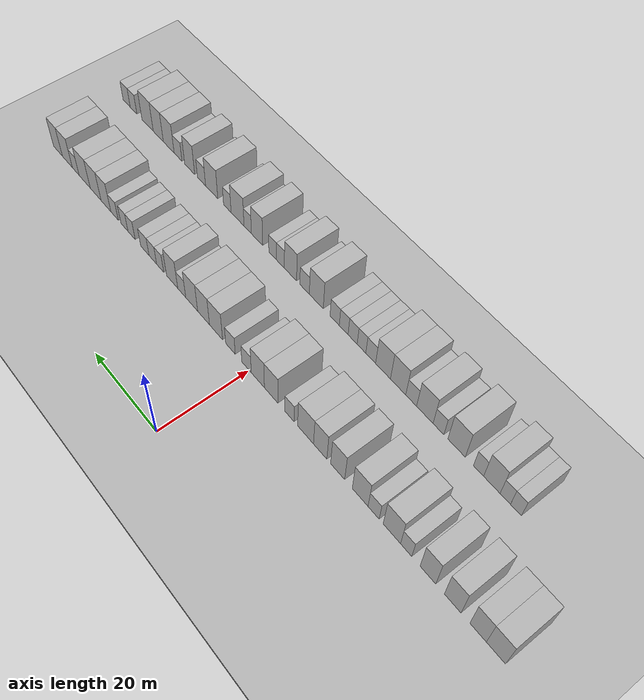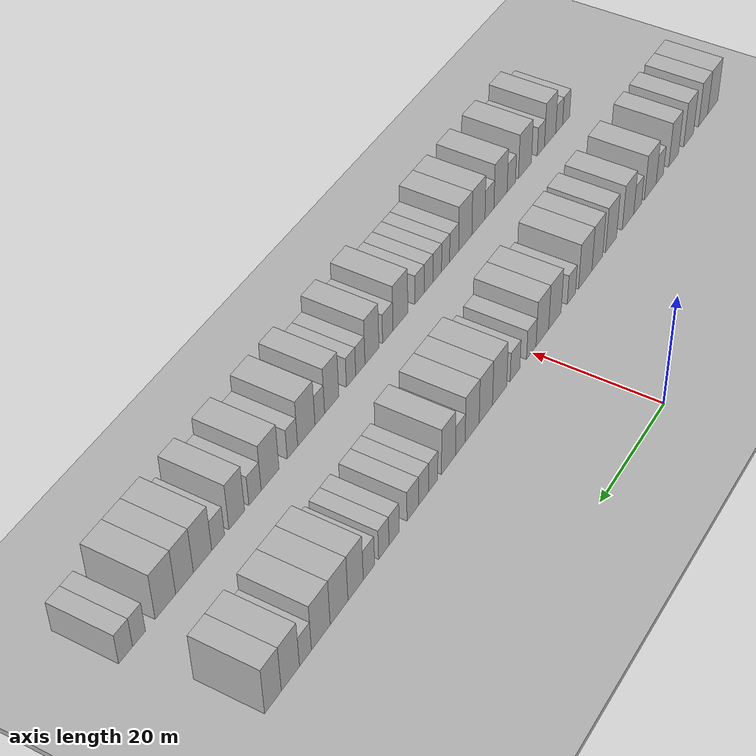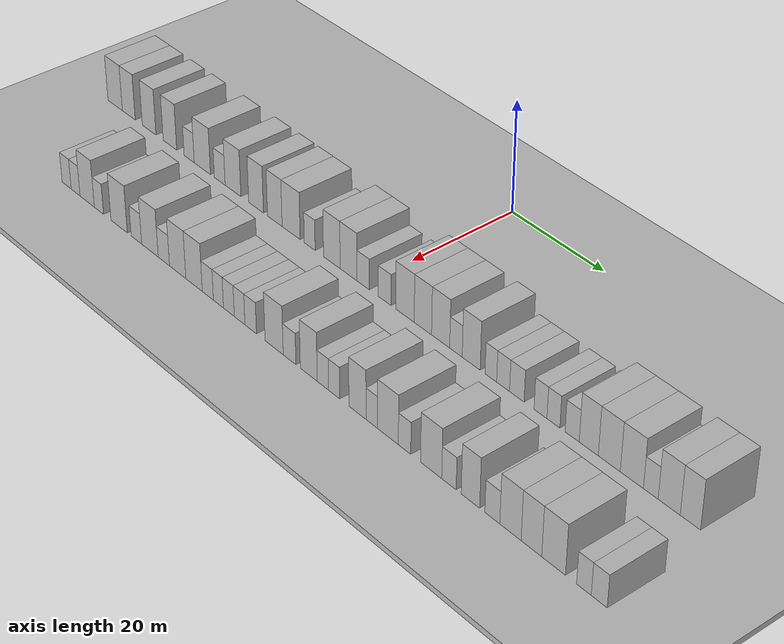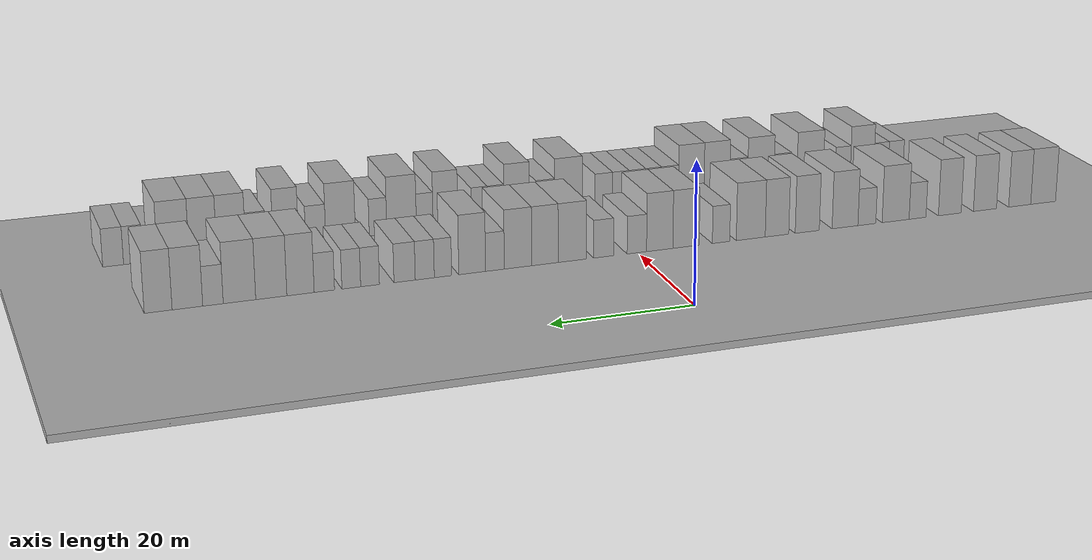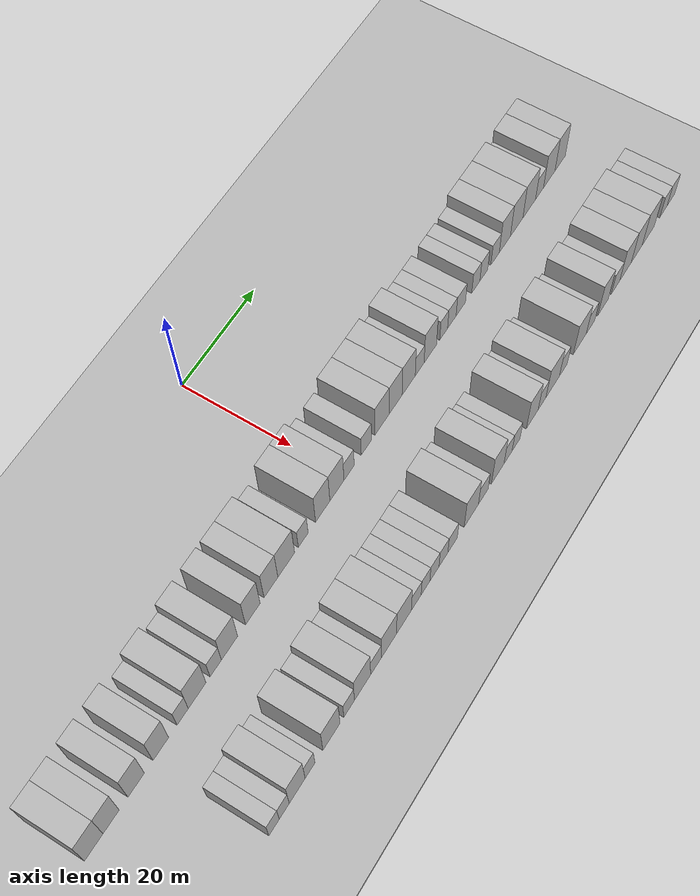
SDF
<sdf version="1.6">
 <world name="default">
  <include><name>ground_plane_1</name><uri>model://HANNAS_ground_plane</uri></include>
  <include>
   <name>ground_plane_2</name>
   <uri>model://HANNAS_ground_plane</uri>
   <pose>100 0 0  0 0 0</pose>
  </include>
  <model name="building_33">
   <static>1</static>
   <pose>25.0000 -63.3956 0 0.000000 0.000000 0.000000</pose>
   <link name="link">
    <pose>0 0 4.50 0 0 0</pose>
    <collision name="collision"><geometry><box><size>10.0000 4.1528 9.0000</size></box></geometry></collision>
    <visual name="visual">
     <cast_shadows>0</cast_shadows>
     <geometry><box><size>10.0000 4.1528 9.0000</size></box></geometry>
     <material>
      <script>
       <uri>model://HANNAS_wall/materials/scripts</uri>
       <uri>model://HANNAS_wall/materials/textures</uri>
       <name>vrc/HANNAS_wall</name>
      </script>
     </material>
    </visual>
   </link>
  </model>
  <model name="building_34">
   <static>1</static>
   <pose>25.0000 -59.4867 0 0.000000 0.000000 0.000000</pose>
   <link name="link">
    <pose>0 0 4.50 0 0 0</pose>
    <collision name="collision"><geometry><box><size>10.0000 3.6648 9.0000</size></box></geometry></collision>
    <visual name="visual">
     <cast_shadows>0</cast_shadows>
     <geometry><box><size>10.0000 3.6648 9.0000</size></box></geometry>
     <material>
      <script>
       <uri>model://HANNAS_wall/materials/scripts</uri>
       <uri>model://HANNAS_wall/materials/textures</uri>
       <name>vrc/HANNAS_wall</name>
      </script>
     </material>
    </visual>
   </link>
  </model>
  <model name="building_35">
   <static>1</static>
   <pose>25.0000 -53.7519 0 0.000000 0.000000 0.000000</pose>
   <link name="link">
    <pose>0 0 4.50 0 0 0</pose>
    <collision name="collision"><geometry><box><size>10.0000 3.8049 9.0000</size></box></geometry></collision>
    <visual name="visual">
     <cast_shadows>0</cast_shadows>
     <geometry><box><size>10.0000 3.8049 9.0000</size></box></geometry>
     <material>
      <script>
       <uri>model://HANNAS_wall/materials/scripts</uri>
       <uri>model://HANNAS_wall/materials/textures</uri>
       <name>vrc/HANNAS_wall</name>
      </script>
     </material>
    </visual>
   </link>
  </model>
  <model name="building_36">
   <static>1</static>
   <pose>25.0000 -47.9954 0 0.000000 0.000000 0.000000</pose>
   <link name="link">
    <pose>0 0 4.50 0 0 0</pose>
    <collision name="collision"><geometry><box><size>10.0000 3.7081 9.0000</size></box></geometry></collision>
    <visual name="visual">
     <cast_shadows>0</cast_shadows>
     <geometry><box><size>10.0000 3.7081 9.0000</size></box></geometry>
     <material>
      <script>
       <uri>model://HANNAS_wall/materials/scripts</uri>
       <uri>model://HANNAS_wall/materials/textures</uri>
       <name>vrc/HANNAS_wall</name>
      </script>
     </material>
    </visual>
   </link>
  </model>
  <model name="building_37">
   <static>1</static>
   <pose>25.0000 -42.7801 0 0.000000 0.000000 0.000000</pose>
   <link name="link">
    <pose>0 0 3.00 0 0 0</pose>
    <collision name="collision"><geometry><box><size>10.0000 2.7225 6.0000</size></box></geometry></collision>
    <visual name="visual">
     <cast_shadows>0</cast_shadows>
     <geometry><box><size>10.0000 2.7225 6.0000</size></box></geometry>
     <material>
      <script>
       <uri>model://HANNAS_wall/materials/scripts</uri>
       <uri>model://HANNAS_wall/materials/textures</uri>
       <name>vrc/HANNAS_wall</name>
      </script>
     </material>
    </visual>
   </link>
  </model>
  <model name="building_38">
   <static>1</static>
   <pose>25.0000 -39.2582 0 0.000000 0.000000 0.000000</pose>
   <link name="link">
    <pose>0 0 4.50 0 0 0</pose>
    <collision name="collision"><geometry><box><size>10.0000 4.3212 9.0000</size></box></geometry></collision>
    <visual name="visual">
     <cast_shadows>0</cast_shadows>
     <geometry><box><size>10.0000 4.3212 9.0000</size></box></geometry>
     <material>
      <script>
       <uri>model://HANNAS_wall/materials/scripts</uri>
       <uri>model://HANNAS_wall/materials/textures</uri>
       <name>vrc/HANNAS_wall</name>
      </script>
     </material>
    </visual>
   </link>
  </model>
  <model name="building_39">
   <static>1</static>
   <pose>25.0000 -34.6795 0 0.000000 0.000000 0.000000</pose>
   <link name="link">
    <pose>0 0 3.00 0 0 0</pose>
    <collision name="collision"><geometry><box><size>10.0000 2.8363 6.0000</size></box></geometry></collision>
    <visual name="visual">
     <cast_shadows>0</cast_shadows>
     <geometry><box><size>10.0000 2.8363 6.0000</size></box></geometry>
     <material>
      <script>
       <uri>model://HANNAS_wall/materials/scripts</uri>
       <uri>model://HANNAS_wall/materials/textures</uri>
       <name>vrc/HANNAS_wall</name>
      </script>
     </material>
    </visual>
   </link>
  </model>
  <model name="building_40">
   <static>1</static>
   <pose>25.0000 -31.2258 0 0.000000 0.000000 0.000000</pose>
   <link name="link">
    <pose>0 0 4.50 0 0 0</pose>
    <collision name="collision"><geometry><box><size>10.0000 4.0711 9.0000</size></box></geometry></collision>
    <visual name="visual">
     <cast_shadows>0</cast_shadows>
     <geometry><box><size>10.0000 4.0711 9.0000</size></box></geometry>
     <material>
      <script>
       <uri>model://HANNAS_wall/materials/scripts</uri>
       <uri>model://HANNAS_wall/materials/textures</uri>
       <name>vrc/HANNAS_wall</name>
      </script>
     </material>
    </visual>
   </link>
  </model>
  <model name="building_41">
   <static>1</static>
   <pose>25.0000 -25.3127 0 0.000000 0.000000 0.000000</pose>
   <link name="link">
    <pose>0 0 4.50 0 0 0</pose>
    <collision name="collision"><geometry><box><size>10.0000 3.7551 9.0000</size></box></geometry></collision>
    <visual name="visual">
     <cast_shadows>0</cast_shadows>
     <geometry><box><size>10.0000 3.7551 9.0000</size></box></geometry>
     <material>
      <script>
       <uri>model://HANNAS_wall/materials/scripts</uri>
       <uri>model://HANNAS_wall/materials/textures</uri>
       <name>vrc/HANNAS_wall</name>
      </script>
     </material>
    </visual>
   </link>
  </model>
  <model name="building_42">
   <static>1</static>
   <pose>25.0000 -20.6182 0 0.000000 0.000000 0.000000</pose>
   <link name="link">
    <pose>0 0 4.50 0 0 0</pose>
    <collision name="collision"><geometry><box><size>10.0000 3.6338 9.0000</size></box></geometry></collision>
    <visual name="visual">
     <cast_shadows>0</cast_shadows>
     <geometry><box><size>10.0000 3.6338 9.0000</size></box></geometry>
     <material>
      <script>
       <uri>model://HANNAS_wall/materials/scripts</uri>
       <uri>model://HANNAS_wall/materials/textures</uri>
       <name>vrc/HANNAS_wall</name>
      </script>
     </material>
    </visual>
   </link>
  </model>
  <model name="building_43">
   <static>1</static>
   <pose>25.0000 -16.5871 0 0.000000 0.000000 0.000000</pose>
   <link name="link">
    <pose>0 0 4.50 0 0 0</pose>
    <collision name="collision"><geometry><box><size>10.0000 4.4284 9.0000</size></box></geometry></collision>
    <visual name="visual">
     <cast_shadows>0</cast_shadows>
     <geometry><box><size>10.0000 4.4284 9.0000</size></box></geometry>
     <material>
      <script>
       <uri>model://HANNAS_wall/materials/scripts</uri>
       <uri>model://HANNAS_wall/materials/textures</uri>
       <name>vrc/HANNAS_wall</name>
      </script>
     </material>
    </visual>
   </link>
  </model>
  <model name="building_44">
   <static>1</static>
   <pose>25.0000 -12.0528 0 0.000000 0.000000 0.000000</pose>
   <link name="link">
    <pose>0 0 3.00 0 0 0</pose>
    <collision name="collision"><geometry><box><size>10.0000 2.6401 6.0000</size></box></geometry></collision>
    <visual name="visual">
     <cast_shadows>0</cast_shadows>
     <geometry><box><size>10.0000 2.6401 6.0000</size></box></geometry>
     <material>
      <script>
       <uri>model://HANNAS_wall/materials/scripts</uri>
       <uri>model://HANNAS_wall/materials/textures</uri>
       <name>vrc/HANNAS_wall</name>
      </script>
     </material>
    </visual>
   </link>
  </model>
  <model name="building_45">
   <static>1</static>
   <pose>25.0000 -6.7608 0 0.000000 0.000000 0.000000</pose>
   <link name="link">
    <pose>0 0 4.50 0 0 0</pose>
    <collision name="collision"><geometry><box><size>10.0000 3.9439 9.0000</size></box></geometry></collision>
    <visual name="visual">
     <cast_shadows>0</cast_shadows>
     <geometry><box><size>10.0000 3.9439 9.0000</size></box></geometry>
     <material>
      <script>
       <uri>model://HANNAS_wall/materials/scripts</uri>
       <uri>model://HANNAS_wall/materials/textures</uri>
       <name>vrc/HANNAS_wall</name>
      </script>
     </material>
    </visual>
   </link>
  </model>
  <model name="building_46">
   <static>1</static>
   <pose>25.0000 -2.8304 0 0.000000 0.000000 0.000000</pose>
   <link name="link">
    <pose>0 0 4.50 0 0 0</pose>
    <collision name="collision"><geometry><box><size>10.0000 3.9170 9.0000</size></box></geometry></collision>
    <visual name="visual">
     <cast_shadows>0</cast_shadows>
     <geometry><box><size>10.0000 3.9170 9.0000</size></box></geometry>
     <material>
      <script>
       <uri>model://HANNAS_wall/materials/scripts</uri>
       <uri>model://HANNAS_wall/materials/textures</uri>
       <name>vrc/HANNAS_wall</name>
      </script>
     </material>
    </visual>
   </link>
  </model>
  <model name="building_47">
   <static>1</static>
   <pose>25.0000 0.5698 0 0.000000 0.000000 0.000000</pose>
   <link name="link">
    <pose>0 0 3.00 0 0 0</pose>
    <collision name="collision"><geometry><box><size>10.0000 2.8833 6.0000</size></box></geometry></collision>
    <visual name="visual">
     <cast_shadows>0</cast_shadows>
     <geometry><box><size>10.0000 2.8833 6.0000</size></box></geometry>
     <material>
      <script>
       <uri>model://HANNAS_wall/materials/scripts</uri>
       <uri>model://HANNAS_wall/materials/textures</uri>
       <name>vrc/HANNAS_wall</name>
      </script>
     </material>
    </visual>
   </link>
  </model>
  <model name="building_48">
   <static>1</static>
   <pose>25.0000 5.4797 0 0.000000 0.000000 0.000000</pose>
   <link name="link">
    <pose>0 0 3.00 0 0 0</pose>
    <collision name="collision"><geometry><box><size>10.0000 2.9365 6.0000</size></box></geometry></collision>
    <visual name="visual">
     <cast_shadows>0</cast_shadows>
     <geometry><box><size>10.0000 2.9365 6.0000</size></box></geometry>
     <material>
      <script>
       <uri>model://HANNAS_wall/materials/scripts</uri>
       <uri>model://HANNAS_wall/materials/textures</uri>
       <name>vrc/HANNAS_wall</name>
      </script>
     </material>
    </visual>
   </link>
  </model>
  <model name="building_49">
   <static>1</static>
   <pose>25.0000 10.0146 0 0.000000 0.000000 0.000000</pose>
   <link name="link">
    <pose>0 0 4.50 0 0 0</pose>
    <collision name="collision"><geometry><box><size>10.0000 4.1333 9.0000</size></box></geometry></collision>
    <visual name="visual">
     <cast_shadows>0</cast_shadows>
     <geometry><box><size>10.0000 4.1333 9.0000</size></box></geometry>
     <material>
      <script>
       <uri>model://HANNAS_wall/materials/scripts</uri>
       <uri>model://HANNAS_wall/materials/textures</uri>
       <name>vrc/HANNAS_wall</name>
      </script>
     </material>
    </visual>
   </link>
  </model>
  <model name="building_50">
   <static>1</static>
   <pose>25.0000 13.9908 0 0.000000 0.000000 0.000000</pose>
   <link name="link">
    <pose>0 0 4.50 0 0 0</pose>
    <collision name="collision"><geometry><box><size>10.0000 3.8190 9.0000</size></box></geometry></collision>
    <visual name="visual">
     <cast_shadows>0</cast_shadows>
     <geometry><box><size>10.0000 3.8190 9.0000</size></box></geometry>
     <material>
      <script>
       <uri>model://HANNAS_wall/materials/scripts</uri>
       <uri>model://HANNAS_wall/materials/textures</uri>
       <name>vrc/HANNAS_wall</name>
      </script>
     </material>
    </visual>
   </link>
  </model>
  <model name="building_51">
   <static>1</static>
   <pose>25.0000 17.8615 0 0.000000 0.000000 0.000000</pose>
   <link name="link">
    <pose>0 0 4.50 0 0 0</pose>
    <collision name="collision"><geometry><box><size>10.0000 3.9226 9.0000</size></box></geometry></collision>
    <visual name="visual">
     <cast_shadows>0</cast_shadows>
     <geometry><box><size>10.0000 3.9226 9.0000</size></box></geometry>
     <material>
      <script>
       <uri>model://HANNAS_wall/materials/scripts</uri>
       <uri>model://HANNAS_wall/materials/textures</uri>
       <name>vrc/HANNAS_wall</name>
      </script>
     </material>
    </visual>
   </link>
  </model>
  <model name="building_52">
   <static>1</static>
   <pose>25.0000 21.1559 0 0.000000 0.000000 0.000000</pose>
   <link name="link">
    <pose>0 0 3.00 0 0 0</pose>
    <collision name="collision"><geometry><box><size>10.0000 2.6662 6.0000</size></box></geometry></collision>
    <visual name="visual">
     <cast_shadows>0</cast_shadows>
     <geometry><box><size>10.0000 2.6662 6.0000</size></box></geometry>
     <material>
      <script>
       <uri>model://HANNAS_wall/materials/scripts</uri>
       <uri>model://HANNAS_wall/materials/textures</uri>
       <name>vrc/HANNAS_wall</name>
      </script>
     </material>
    </visual>
   </link>
  </model>
  <model name="building_53">
   <static>1</static>
   <pose>25.0000 24.3849 0 0.000000 0.000000 0.000000</pose>
   <link name="link">
    <pose>0 0 4.50 0 0 0</pose>
    <collision name="collision"><geometry><box><size>10.0000 3.7916 9.0000</size></box></geometry></collision>
    <visual name="visual">
     <cast_shadows>0</cast_shadows>
     <geometry><box><size>10.0000 3.7916 9.0000</size></box></geometry>
     <material>
      <script>
       <uri>model://HANNAS_wall/materials/scripts</uri>
       <uri>model://HANNAS_wall/materials/textures</uri>
       <name>vrc/HANNAS_wall</name>
      </script>
     </material>
    </visual>
   </link>
  </model>
  <model name="building_54">
   <static>1</static>
   <pose>25.0000 28.4939 0 0.000000 0.000000 0.000000</pose>
   <link name="link">
    <pose>0 0 3.00 0 0 0</pose>
    <collision name="collision"><geometry><box><size>10.0000 2.4265 6.0000</size></box></geometry></collision>
    <visual name="visual">
     <cast_shadows>0</cast_shadows>
     <geometry><box><size>10.0000 2.4265 6.0000</size></box></geometry>
     <material>
      <script>
       <uri>model://HANNAS_wall/materials/scripts</uri>
       <uri>model://HANNAS_wall/materials/textures</uri>
       <name>vrc/HANNAS_wall</name>
      </script>
     </material>
    </visual>
   </link>
  </model>
  <model name="building_55">
   <static>1</static>
   <pose>25.0000 31.0345 0 0.000000 0.000000 0.000000</pose>
   <link name="link">
    <pose>0 0 3.00 0 0 0</pose>
    <collision name="collision"><geometry><box><size>10.0000 2.6546 6.0000</size></box></geometry></collision>
    <visual name="visual">
     <cast_shadows>0</cast_shadows>
     <geometry><box><size>10.0000 2.6546 6.0000</size></box></geometry>
     <material>
      <script>
       <uri>model://HANNAS_wall/materials/scripts</uri>
       <uri>model://HANNAS_wall/materials/textures</uri>
       <name>vrc/HANNAS_wall</name>
      </script>
     </material>
    </visual>
   </link>
  </model>
  <model name="building_56">
   <static>1</static>
   <pose>25.0000 33.8385 0 0.000000 0.000000 0.000000</pose>
   <link name="link">
    <pose>0 0 3.00 0 0 0</pose>
    <collision name="collision"><geometry><box><size>10.0000 2.9533 6.0000</size></box></geometry></collision>
    <visual name="visual">
     <cast_shadows>0</cast_shadows>
     <geometry><box><size>10.0000 2.9533 6.0000</size></box></geometry>
     <material>
      <script>
       <uri>model://HANNAS_wall/materials/scripts</uri>
       <uri>model://HANNAS_wall/materials/textures</uri>
       <name>vrc/HANNAS_wall</name>
      </script>
     </material>
    </visual>
   </link>
  </model>
  <model name="building_57">
   <static>1</static>
   <pose>25.0000 38.6022 0 0.000000 0.000000 0.000000</pose>
   <link name="link">
    <pose>0 0 3.00 0 0 0</pose>
    <collision name="collision"><geometry><box><size>10.0000 2.5742 6.0000</size></box></geometry></collision>
    <visual name="visual">
     <cast_shadows>0</cast_shadows>
     <geometry><box><size>10.0000 2.5742 6.0000</size></box></geometry>
     <material>
      <script>
       <uri>model://HANNAS_wall/materials/scripts</uri>
       <uri>model://HANNAS_wall/materials/textures</uri>
       <name>vrc/HANNAS_wall</name>
      </script>
     </material>
    </visual>
   </link>
  </model>
  <model name="building_58">
   <static>1</static>
   <pose>25.0000 41.1725 0 0.000000 0.000000 0.000000</pose>
   <link name="link">
    <pose>0 0 3.00 0 0 0</pose>
    <collision name="collision"><geometry><box><size>10.0000 2.5664 6.0000</size></box></geometry></collision>
    <visual name="visual">
     <cast_shadows>0</cast_shadows>
     <geometry><box><size>10.0000 2.5664 6.0000</size></box></geometry>
     <material>
      <script>
       <uri>model://HANNAS_wall/materials/scripts</uri>
       <uri>model://HANNAS_wall/materials/textures</uri>
       <name>vrc/HANNAS_wall</name>
      </script>
     </material>
    </visual>
   </link>
  </model>
  <model name="building_59">
   <static>1</static>
   <pose>25.0000 44.8324 0 0.000000 0.000000 0.000000</pose>
   <link name="link">
    <pose>0 0 3.00 0 0 0</pose>
    <collision name="collision"><geometry><box><size>10.0000 2.7533 6.0000</size></box></geometry></collision>
    <visual name="visual">
     <cast_shadows>0</cast_shadows>
     <geometry><box><size>10.0000 2.7533 6.0000</size></box></geometry>
     <material>
      <script>
       <uri>model://HANNAS_wall/materials/scripts</uri>
       <uri>model://HANNAS_wall/materials/textures</uri>
       <name>vrc/HANNAS_wall</name>
      </script>
     </material>
    </visual>
   </link>
  </model>
  <model name="building_60">
   <static>1</static>
   <pose>25.0000 48.0461 0 0.000000 0.000000 0.000000</pose>
   <link name="link">
    <pose>0 0 4.50 0 0 0</pose>
    <collision name="collision"><geometry><box><size>10.0000 3.6741 9.0000</size></box></geometry></collision>
    <visual name="visual">
     <cast_shadows>0</cast_shadows>
     <geometry><box><size>10.0000 3.6741 9.0000</size></box></geometry>
     <material>
      <script>
       <uri>model://HANNAS_wall/materials/scripts</uri>
       <uri>model://HANNAS_wall/materials/textures</uri>
       <name>vrc/HANNAS_wall</name>
      </script>
     </material>
    </visual>
   </link>
  </model>
  <model name="building_61">
   <static>1</static>
   <pose>25.0000 51.9628 0 0.000000 0.000000 0.000000</pose>
   <link name="link">
    <pose>0 0 4.50 0 0 0</pose>
    <collision name="collision"><geometry><box><size>10.0000 4.1593 9.0000</size></box></geometry></collision>
    <visual name="visual">
     <cast_shadows>0</cast_shadows>
     <geometry><box><size>10.0000 4.1593 9.0000</size></box></geometry>
     <material>
      <script>
       <uri>model://HANNAS_wall/materials/scripts</uri>
       <uri>model://HANNAS_wall/materials/textures</uri>
       <name>vrc/HANNAS_wall</name>
      </script>
     </material>
    </visual>
   </link>
  </model>
  <model name="building_62">
   <static>1</static>
   <pose>25.0000 56.1932 0 0.000000 0.000000 0.000000</pose>
   <link name="link">
    <pose>0 0 4.50 0 0 0</pose>
    <collision name="collision"><geometry><box><size>10.0000 4.3015 9.0000</size></box></geometry></collision>
    <visual name="visual">
     <cast_shadows>0</cast_shadows>
     <geometry><box><size>10.0000 4.3015 9.0000</size></box></geometry>
     <material>
      <script>
       <uri>model://HANNAS_wall/materials/scripts</uri>
       <uri>model://HANNAS_wall/materials/textures</uri>
       <name>vrc/HANNAS_wall</name>
      </script>
     </material>
    </visual>
   </link>
  </model>
  <model name="building_63">
   <static>1</static>
   <pose>25.0000 59.6913 0 0.000000 0.000000 0.000000</pose>
   <link name="link">
    <pose>0 0 3.00 0 0 0</pose>
    <collision name="collision"><geometry><box><size>10.0000 2.6946 6.0000</size></box></geometry></collision>
    <visual name="visual">
     <cast_shadows>0</cast_shadows>
     <geometry><box><size>10.0000 2.6946 6.0000</size></box></geometry>
     <material>
      <script>
       <uri>model://HANNAS_wall/materials/scripts</uri>
       <uri>model://HANNAS_wall/materials/textures</uri>
       <name>vrc/HANNAS_wall</name>
      </script>
     </material>
    </visual>
   </link>
  </model>
  <model name="building_64">
   <static>1</static>
   <pose>25.0000 63.0331 0 0.000000 0.000000 0.000000</pose>
   <link name="link">
    <pose>0 0 4.50 0 0 0</pose>
    <collision name="collision"><geometry><box><size>10.0000 3.9888 9.0000</size></box></geometry></collision>
    <visual name="visual">
     <cast_shadows>0</cast_shadows>
     <geometry><box><size>10.0000 3.9888 9.0000</size></box></geometry>
     <material>
      <script>
       <uri>model://HANNAS_wall/materials/scripts</uri>
       <uri>model://HANNAS_wall/materials/textures</uri>
       <name>vrc/HANNAS_wall</name>
      </script>
     </material>
    </visual>
   </link>
  </model>
  <model name="building_65">
   <static>1</static>
   <pose>25.0000 66.8379 0 0.000000 0.000000 0.000000</pose>
   <link name="link">
    <pose>0 0 4.50 0 0 0</pose>
    <collision name="collision"><geometry><box><size>10.0000 3.6209 9.0000</size></box></geometry></collision>
    <visual name="visual">
     <cast_shadows>0</cast_shadows>
     <geometry><box><size>10.0000 3.6209 9.0000</size></box></geometry>
     <material>
      <script>
       <uri>model://HANNAS_wall/materials/scripts</uri>
       <uri>model://HANNAS_wall/materials/textures</uri>
       <name>vrc/HANNAS_wall</name>
      </script>
     </material>
    </visual>
   </link>
  </model>
  <model name="building_134">
   <static>1</static>
   <pose>44.0000 -48.7869 0 0.000000 0.000000 0.000000</pose>
   <link name="link">
    <pose>0 0 3.00 0 0 0</pose>
    <collision name="collision"><geometry><box><size>10.0000 2.5244 6.0000</size></box></geometry></collision>
    <visual name="visual">
     <cast_shadows>0</cast_shadows>
     <geometry><box><size>10.0000 2.5244 6.0000</size></box></geometry>
     <material>
      <script>
       <uri>model://HANNAS_wall/materials/scripts</uri>
       <uri>model://HANNAS_wall/materials/textures</uri>
       <name>vrc/HANNAS_wall</name>
      </script>
     </material>
    </visual>
   </link>
  </model>
  <model name="building_135">
   <static>1</static>
   <pose>44.0000 -46.2961 0 0.000000 0.000000 0.000000</pose>
   <link name="link">
    <pose>0 0 3.00 0 0 0</pose>
    <collision name="collision"><geometry><box><size>10.0000 2.4573 6.0000</size></box></geometry></collision>
    <visual name="visual">
     <cast_shadows>0</cast_shadows>
     <geometry><box><size>10.0000 2.4573 6.0000</size></box></geometry>
     <material>
      <script>
       <uri>model://HANNAS_wall/materials/scripts</uri>
       <uri>model://HANNAS_wall/materials/textures</uri>
       <name>vrc/HANNAS_wall</name>
      </script>
     </material>
    </visual>
   </link>
  </model>
  <model name="building_136">
   <static>1</static>
   <pose>44.0000 -43.0990 0 0.000000 0.000000 0.000000</pose>
   <link name="link">
    <pose>0 0 4.50 0 0 0</pose>
    <collision name="collision"><geometry><box><size>10.0000 3.9370 9.0000</size></box></geometry></collision>
    <visual name="visual">
     <cast_shadows>0</cast_shadows>
     <geometry><box><size>10.0000 3.9370 9.0000</size></box></geometry>
     <material>
      <script>
       <uri>model://HANNAS_wall/materials/scripts</uri>
       <uri>model://HANNAS_wall/materials/textures</uri>
       <name>vrc/HANNAS_wall</name>
      </script>
     </material>
    </visual>
   </link>
  </model>
  <model name="building_137">
   <static>1</static>
   <pose>44.0000 -39.8881 0 0.000000 0.000000 0.000000</pose>
   <link name="link">
    <pose>0 0 3.00 0 0 0</pose>
    <collision name="collision"><geometry><box><size>10.0000 2.4848 6.0000</size></box></geometry></collision>
    <visual name="visual">
     <cast_shadows>0</cast_shadows>
     <geometry><box><size>10.0000 2.4848 6.0000</size></box></geometry>
     <material>
      <script>
       <uri>model://HANNAS_wall/materials/scripts</uri>
       <uri>model://HANNAS_wall/materials/textures</uri>
       <name>vrc/HANNAS_wall</name>
      </script>
     </material>
    </visual>
   </link>
  </model>
  <model name="building_138">
   <static>1</static>
   <pose>44.0000 -34.4599 0 0.000000 0.000000 0.000000</pose>
   <link name="link">
    <pose>0 0 4.50 0 0 0</pose>
    <collision name="collision"><geometry><box><size>10.0000 4.3716 9.0000</size></box></geometry></collision>
    <visual name="visual">
     <cast_shadows>0</cast_shadows>
     <geometry><box><size>10.0000 4.3716 9.0000</size></box></geometry>
     <material>
      <script>
       <uri>model://HANNAS_wall/materials/scripts</uri>
       <uri>model://HANNAS_wall/materials/textures</uri>
       <name>vrc/HANNAS_wall</name>
      </script>
     </material>
    </visual>
   </link>
  </model>
  <model name="building_139">
   <static>1</static>
   <pose>44.0000 -29.8962 0 0.000000 0.000000 0.000000</pose>
   <link name="link">
    <pose>0 0 3.00 0 0 0</pose>
    <collision name="collision"><geometry><box><size>10.0000 2.7557 6.0000</size></box></geometry></collision>
    <visual name="visual">
     <cast_shadows>0</cast_shadows>
     <geometry><box><size>10.0000 2.7557 6.0000</size></box></geometry>
     <material>
      <script>
       <uri>model://HANNAS_wall/materials/scripts</uri>
       <uri>model://HANNAS_wall/materials/textures</uri>
       <name>vrc/HANNAS_wall</name>
      </script>
     </material>
    </visual>
   </link>
  </model>
  <model name="building_140">
   <static>1</static>
   <pose>44.0000 -26.3732 0 0.000000 0.000000 0.000000</pose>
   <link name="link">
    <pose>0 0 4.50 0 0 0</pose>
    <collision name="collision"><geometry><box><size>10.0000 4.2903 9.0000</size></box></geometry></collision>
    <visual name="visual">
     <cast_shadows>0</cast_shadows>
     <geometry><box><size>10.0000 4.2903 9.0000</size></box></geometry>
     <material>
      <script>
       <uri>model://HANNAS_wall/materials/scripts</uri>
       <uri>model://HANNAS_wall/materials/textures</uri>
       <name>vrc/HANNAS_wall</name>
      </script>
     </material>
    </visual>
   </link>
  </model>
  <model name="building_141">
   <static>1</static>
   <pose>44.0000 -22.7882 0 0.000000 0.000000 0.000000</pose>
   <link name="link">
    <pose>0 0 3.00 0 0 0</pose>
    <collision name="collision"><geometry><box><size>10.0000 2.8796 6.0000</size></box></geometry></collision>
    <visual name="visual">
     <cast_shadows>0</cast_shadows>
     <geometry><box><size>10.0000 2.8796 6.0000</size></box></geometry>
     <material>
      <script>
       <uri>model://HANNAS_wall/materials/scripts</uri>
       <uri>model://HANNAS_wall/materials/textures</uri>
       <name>vrc/HANNAS_wall</name>
      </script>
     </material>
    </visual>
   </link>
  </model>
  <model name="building_142">
   <static>1</static>
   <pose>44.0000 -19.2845 0 0.000000 0.000000 0.000000</pose>
   <link name="link">
    <pose>0 0 4.50 0 0 0</pose>
    <collision name="collision"><geometry><box><size>10.0000 4.1278 9.0000</size></box></geometry></collision>
    <visual name="visual">
     <cast_shadows>0</cast_shadows>
     <geometry><box><size>10.0000 4.1278 9.0000</size></box></geometry>
     <material>
      <script>
       <uri>model://HANNAS_wall/materials/scripts</uri>
       <uri>model://HANNAS_wall/materials/textures</uri>
       <name>vrc/HANNAS_wall</name>
      </script>
     </material>
    </visual>
   </link>
  </model>
  <model name="building_143">
   <static>1</static>
   <pose>44.0000 -15.1762 0 0.000000 0.000000 0.000000</pose>
   <link name="link">
    <pose>0 0 4.50 0 0 0</pose>
    <collision name="collision"><geometry><box><size>10.0000 4.0889 9.0000</size></box></geometry></collision>
    <visual name="visual">
     <cast_shadows>0</cast_shadows>
     <geometry><box><size>10.0000 4.0889 9.0000</size></box></geometry>
     <material>
      <script>
       <uri>model://HANNAS_wall/materials/scripts</uri>
       <uri>model://HANNAS_wall/materials/textures</uri>
       <name>vrc/HANNAS_wall</name>
      </script>
     </material>
    </visual>
   </link>
  </model>
  <model name="building_144">
   <static>1</static>
   <pose>44.0000 -11.7654 0 0.000000 0.000000 0.000000</pose>
   <link name="link">
    <pose>0 0 3.00 0 0 0</pose>
    <collision name="collision"><geometry><box><size>10.0000 2.7328 6.0000</size></box></geometry></collision>
    <visual name="visual">
     <cast_shadows>0</cast_shadows>
     <geometry><box><size>10.0000 2.7328 6.0000</size></box></geometry>
     <material>
      <script>
       <uri>model://HANNAS_wall/materials/scripts</uri>
       <uri>model://HANNAS_wall/materials/textures</uri>
       <name>vrc/HANNAS_wall</name>
      </script>
     </material>
    </visual>
   </link>
  </model>
  <model name="building_145">
   <static>1</static>
   <pose>44.0000 -9.1761 0 0.000000 0.000000 0.000000</pose>
   <link name="link">
    <pose>0 0 3.00 0 0 0</pose>
    <collision name="collision"><geometry><box><size>10.0000 2.4458 6.0000</size></box></geometry></collision>
    <visual name="visual">
     <cast_shadows>0</cast_shadows>
     <geometry><box><size>10.0000 2.4458 6.0000</size></box></geometry>
     <material>
      <script>
       <uri>model://HANNAS_wall/materials/scripts</uri>
       <uri>model://HANNAS_wall/materials/textures</uri>
       <name>vrc/HANNAS_wall</name>
      </script>
     </material>
    </visual>
   </link>
  </model>
  <model name="building_146">
   <static>1</static>
   <pose>44.0000 -6.6528 0 0.000000 0.000000 0.000000</pose>
   <link name="link">
    <pose>0 0 3.00 0 0 0</pose>
    <collision name="collision"><geometry><box><size>10.0000 2.6008 6.0000</size></box></geometry></collision>
    <visual name="visual">
     <cast_shadows>0</cast_shadows>
     <geometry><box><size>10.0000 2.6008 6.0000</size></box></geometry>
     <material>
      <script>
       <uri>model://HANNAS_wall/materials/scripts</uri>
       <uri>model://HANNAS_wall/materials/textures</uri>
       <name>vrc/HANNAS_wall</name>
      </script>
     </material>
    </visual>
   </link>
  </model>
  <model name="building_147">
   <static>1</static>
   <pose>44.0000 -4.0775 0 0.000000 0.000000 0.000000</pose>
   <link name="link">
    <pose>0 0 3.00 0 0 0</pose>
    <collision name="collision"><geometry><box><size>10.0000 2.5498 6.0000</size></box></geometry></collision>
    <visual name="visual">
     <cast_shadows>0</cast_shadows>
     <geometry><box><size>10.0000 2.5498 6.0000</size></box></geometry>
     <material>
      <script>
       <uri>model://HANNAS_wall/materials/scripts</uri>
       <uri>model://HANNAS_wall/materials/textures</uri>
       <name>vrc/HANNAS_wall</name>
      </script>
     </material>
    </visual>
   </link>
  </model>
  <model name="building_148">
   <static>1</static>
   <pose>44.0000 -1.4398 0 0.000000 0.000000 0.000000</pose>
   <link name="link">
    <pose>0 0 3.00 0 0 0</pose>
    <collision name="collision"><geometry><box><size>10.0000 2.7255 6.0000</size></box></geometry></collision>
    <visual name="visual">
     <cast_shadows>0</cast_shadows>
     <geometry><box><size>10.0000 2.7255 6.0000</size></box></geometry>
     <material>
      <script>
       <uri>model://HANNAS_wall/materials/scripts</uri>
       <uri>model://HANNAS_wall/materials/textures</uri>
       <name>vrc/HANNAS_wall</name>
      </script>
     </material>
    </visual>
   </link>
  </model>
  <model name="building_149">
   <static>1</static>
   <pose>44.0000 4.0258 0 0.000000 0.000000 0.000000</pose>
   <link name="link">
    <pose>0 0 4.50 0 0 0</pose>
    <collision name="collision"><geometry><box><size>10.0000 4.2058 9.0000</size></box></geometry></collision>
    <visual name="visual">
     <cast_shadows>0</cast_shadows>
     <geometry><box><size>10.0000 4.2058 9.0000</size></box></geometry>
     <material>
      <script>
       <uri>model://HANNAS_wall/materials/scripts</uri>
       <uri>model://HANNAS_wall/materials/textures</uri>
       <name>vrc/HANNAS_wall</name>
      </script>
     </material>
    </visual>
   </link>
  </model>
  <model name="building_150">
   <static>1</static>
   <pose>44.0000 7.5783 0 0.000000 0.000000 0.000000</pose>
   <link name="link">
    <pose>0 0 3.00 0 0 0</pose>
    <collision name="collision"><geometry><box><size>10.0000 2.8992 6.0000</size></box></geometry></collision>
    <visual name="visual">
     <cast_shadows>0</cast_shadows>
     <geometry><box><size>10.0000 2.8992 6.0000</size></box></geometry>
     <material>
      <script>
       <uri>model://HANNAS_wall/materials/scripts</uri>
       <uri>model://HANNAS_wall/materials/textures</uri>
       <name>vrc/HANNAS_wall</name>
      </script>
     </material>
    </visual>
   </link>
  </model>
  <model name="building_151">
   <static>1</static>
   <pose>44.0000 11.9338 0 0.000000 0.000000 0.000000</pose>
   <link name="link">
    <pose>0 0 4.50 0 0 0</pose>
    <collision name="collision"><geometry><box><size>10.0000 3.8119 9.0000</size></box></geometry></collision>
    <visual name="visual">
     <cast_shadows>0</cast_shadows>
     <geometry><box><size>10.0000 3.8119 9.0000</size></box></geometry>
     <material>
      <script>
       <uri>model://HANNAS_wall/materials/scripts</uri>
       <uri>model://HANNAS_wall/materials/textures</uri>
       <name>vrc/HANNAS_wall</name>
      </script>
     </material>
    </visual>
   </link>
  </model>
  <model name="building_152">
   <static>1</static>
   <pose>44.0000 15.0789 0 0.000000 0.000000 0.000000</pose>
   <link name="link">
    <pose>0 0 3.00 0 0 0</pose>
    <collision name="collision"><geometry><box><size>10.0000 2.4783 6.0000</size></box></geometry></collision>
    <visual name="visual">
     <cast_shadows>0</cast_shadows>
     <geometry><box><size>10.0000 2.4783 6.0000</size></box></geometry>
     <material>
      <script>
       <uri>model://HANNAS_wall/materials/scripts</uri>
       <uri>model://HANNAS_wall/materials/textures</uri>
       <name>vrc/HANNAS_wall</name>
      </script>
     </material>
    </visual>
   </link>
  </model>
  <model name="building_153">
   <static>1</static>
   <pose>44.0000 17.5504 0 0.000000 0.000000 0.000000</pose>
   <link name="link">
    <pose>0 0 3.00 0 0 0</pose>
    <collision name="collision"><geometry><box><size>10.0000 2.4646 6.0000</size></box></geometry></collision>
    <visual name="visual">
     <cast_shadows>0</cast_shadows>
     <geometry><box><size>10.0000 2.4646 6.0000</size></box></geometry>
     <material>
      <script>
       <uri>model://HANNAS_wall/materials/scripts</uri>
       <uri>model://HANNAS_wall/materials/textures</uri>
       <name>vrc/HANNAS_wall</name>
      </script>
     </material>
    </visual>
   </link>
  </model>
  <model name="building_154">
   <static>1</static>
   <pose>44.0000 22.6250 0 0.000000 0.000000 0.000000</pose>
   <link name="link">
    <pose>0 0 4.50 0 0 0</pose>
    <collision name="collision"><geometry><box><size>10.0000 3.6846 9.0000</size></box></geometry></collision>
    <visual name="visual">
     <cast_shadows>0</cast_shadows>
     <geometry><box><size>10.0000 3.6846 9.0000</size></box></geometry>
     <material>
      <script>
       <uri>model://HANNAS_wall/materials/scripts</uri>
       <uri>model://HANNAS_wall/materials/textures</uri>
       <name>vrc/HANNAS_wall</name>
      </script>
     </material>
    </visual>
   </link>
  </model>
  <model name="building_155">
   <static>1</static>
   <pose>44.0000 25.6969 0 0.000000 0.000000 0.000000</pose>
   <link name="link">
    <pose>0 0 3.00 0 0 0</pose>
    <collision name="collision"><geometry><box><size>10.0000 2.4592 6.0000</size></box></geometry></collision>
    <visual name="visual">
     <cast_shadows>0</cast_shadows>
     <geometry><box><size>10.0000 2.4592 6.0000</size></box></geometry>
     <material>
      <script>
       <uri>model://HANNAS_wall/materials/scripts</uri>
       <uri>model://HANNAS_wall/materials/textures</uri>
       <name>vrc/HANNAS_wall</name>
      </script>
     </material>
    </visual>
   </link>
  </model>
  <model name="building_156">
   <static>1</static>
   <pose>44.0000 29.0979 0 0.000000 0.000000 0.000000</pose>
   <link name="link">
    <pose>0 0 4.50 0 0 0</pose>
    <collision name="collision"><geometry><box><size>10.0000 4.3429 9.0000</size></box></geometry></collision>
    <visual name="visual">
     <cast_shadows>0</cast_shadows>
     <geometry><box><size>10.0000 4.3429 9.0000</size></box></geometry>
     <material>
      <script>
       <uri>model://HANNAS_wall/materials/scripts</uri>
       <uri>model://HANNAS_wall/materials/textures</uri>
       <name>vrc/HANNAS_wall</name>
      </script>
     </material>
    </visual>
   </link>
  </model>
  <model name="building_157">
   <static>1</static>
   <pose>44.0000 32.5561 0 0.000000 0.000000 0.000000</pose>
   <link name="link">
    <pose>0 0 3.00 0 0 0</pose>
    <collision name="collision"><geometry><box><size>10.0000 2.5735 6.0000</size></box></geometry></collision>
    <visual name="visual">
     <cast_shadows>0</cast_shadows>
     <geometry><box><size>10.0000 2.5735 6.0000</size></box></geometry>
     <material>
      <script>
       <uri>model://HANNAS_wall/materials/scripts</uri>
       <uri>model://HANNAS_wall/materials/textures</uri>
       <name>vrc/HANNAS_wall</name>
      </script>
     </material>
    </visual>
   </link>
  </model>
  <model name="building_158">
   <static>1</static>
   <pose>44.0000 37.9810 0 0.000000 0.000000 0.000000</pose>
   <link name="link">
    <pose>0 0 4.50 0 0 0</pose>
    <collision name="collision"><geometry><box><size>10.0000 4.2763 9.0000</size></box></geometry></collision>
    <visual name="visual">
     <cast_shadows>0</cast_shadows>
     <geometry><box><size>10.0000 4.2763 9.0000</size></box></geometry>
     <material>
      <script>
       <uri>model://HANNAS_wall/materials/scripts</uri>
       <uri>model://HANNAS_wall/materials/textures</uri>
       <name>vrc/HANNAS_wall</name>
      </script>
     </material>
    </visual>
   </link>
  </model>
  <model name="building_159">
   <static>1</static>
   <pose>44.0000 41.5603 0 0.000000 0.000000 0.000000</pose>
   <link name="link">
    <pose>0 0 3.00 0 0 0</pose>
    <collision name="collision"><geometry><box><size>10.0000 2.8823 6.0000</size></box></geometry></collision>
    <visual name="visual">
     <cast_shadows>0</cast_shadows>
     <geometry><box><size>10.0000 2.8823 6.0000</size></box></geometry>
     <material>
      <script>
       <uri>model://HANNAS_wall/materials/scripts</uri>
       <uri>model://HANNAS_wall/materials/textures</uri>
       <name>vrc/HANNAS_wall</name>
      </script>
     </material>
    </visual>
   </link>
  </model>
  <model name="building_160">
   <static>1</static>
   <pose>44.0000 45.8066 0 0.000000 0.000000 0.000000</pose>
   <link name="link">
    <pose>0 0 4.50 0 0 0</pose>
    <collision name="collision"><geometry><box><size>10.0000 3.6102 9.0000</size></box></geometry></collision>
    <visual name="visual">
     <cast_shadows>0</cast_shadows>
     <geometry><box><size>10.0000 3.6102 9.0000</size></box></geometry>
     <material>
      <script>
       <uri>model://HANNAS_wall/materials/scripts</uri>
       <uri>model://HANNAS_wall/materials/textures</uri>
       <name>vrc/HANNAS_wall</name>
      </script>
     </material>
    </visual>
   </link>
  </model>
  <model name="building_161">
   <static>1</static>
   <pose>44.0000 50.0493 0 0.000000 0.000000 0.000000</pose>
   <link name="link">
    <pose>0 0 3.00 0 0 0</pose>
    <collision name="collision"><geometry><box><size>10.0000 2.8751 6.0000</size></box></geometry></collision>
    <visual name="visual">
     <cast_shadows>0</cast_shadows>
     <geometry><box><size>10.0000 2.8751 6.0000</size></box></geometry>
     <material>
      <script>
       <uri>model://HANNAS_wall/materials/scripts</uri>
       <uri>model://HANNAS_wall/materials/textures</uri>
       <name>vrc/HANNAS_wall</name>
      </script>
     </material>
    </visual>
   </link>
  </model>
  <model name="building_162">
   <static>1</static>
   <pose>44.0000 53.5107 0 0.000000 0.000000 0.000000</pose>
   <link name="link">
    <pose>0 0 4.50 0 0 0</pose>
    <collision name="collision"><geometry><box><size>10.0000 4.0477 9.0000</size></box></geometry></collision>
    <visual name="visual">
     <cast_shadows>0</cast_shadows>
     <geometry><box><size>10.0000 4.0477 9.0000</size></box></geometry>
     <material>
      <script>
       <uri>model://HANNAS_wall/materials/scripts</uri>
       <uri>model://HANNAS_wall/materials/textures</uri>
       <name>vrc/HANNAS_wall</name>
      </script>
     </material>
    </visual>
   </link>
  </model>
  <model name="building_163">
   <static>1</static>
   <pose>44.0000 57.4574 0 0.000000 0.000000 0.000000</pose>
   <link name="link">
    <pose>0 0 4.50 0 0 0</pose>
    <collision name="collision"><geometry><box><size>10.0000 3.8458 9.0000</size></box></geometry></collision>
    <visual name="visual">
     <cast_shadows>0</cast_shadows>
     <geometry><box><size>10.0000 3.8458 9.0000</size></box></geometry>
     <material>
      <script>
       <uri>model://HANNAS_wall/materials/scripts</uri>
       <uri>model://HANNAS_wall/materials/textures</uri>
       <name>vrc/HANNAS_wall</name>
      </script>
     </material>
    </visual>
   </link>
  </model>
  <model name="building_164">
   <static>1</static>
   <pose>44.0000 61.5601 0 0.000000 0.000000 0.000000</pose>
   <link name="link">
    <pose>0 0 4.50 0 0 0</pose>
    <collision name="collision"><geometry><box><size>10.0000 4.3595 9.0000</size></box></geometry></collision>
    <visual name="visual">
     <cast_shadows>0</cast_shadows>
     <geometry><box><size>10.0000 4.3595 9.0000</size></box></geometry>
     <material>
      <script>
       <uri>model://HANNAS_wall/materials/scripts</uri>
       <uri>model://HANNAS_wall/materials/textures</uri>
       <name>vrc/HANNAS_wall</name>
      </script>
     </material>
    </visual>
   </link>
  </model>
  <model name="building_165">
   <static>1</static>
   <pose>44.0000 67.0578 0 0.000000 0.000000 0.000000</pose>
   <link name="link">
    <pose>0 0 3.00 0 0 0</pose>
    <collision name="collision"><geometry><box><size>10.0000 2.6358 6.0000</size></box></geometry></collision>
    <visual name="visual">
     <cast_shadows>0</cast_shadows>
     <geometry><box><size>10.0000 2.6358 6.0000</size></box></geometry>
     <material>
      <script>
       <uri>model://HANNAS_wall/materials/scripts</uri>
       <uri>model://HANNAS_wall/materials/textures</uri>
       <name>vrc/HANNAS_wall</name>
      </script>
     </material>
    </visual>
   </link>
  </model>
  <model name="building_166">
   <static>1</static>
   <pose>44.0000 69.7910 0 0.000000 0.000000 0.000000</pose>
   <link name="link">
    <pose>0 0 3.00 0 0 0</pose>
    <collision name="collision"><geometry><box><size>10.0000 2.8307 6.0000</size></box></geometry></collision>
    <visual name="visual">
     <cast_shadows>0</cast_shadows>
     <geometry><box><size>10.0000 2.8307 6.0000</size></box></geometry>
     <material>
      <script>
       <uri>model://HANNAS_wall/materials/scripts</uri>
       <uri>model://HANNAS_wall/materials/textures</uri>
       <name>vrc/HANNAS_wall</name>
      </script>
     </material>
    </visual>
   </link>
  </model>
 </world>
</sdf>
